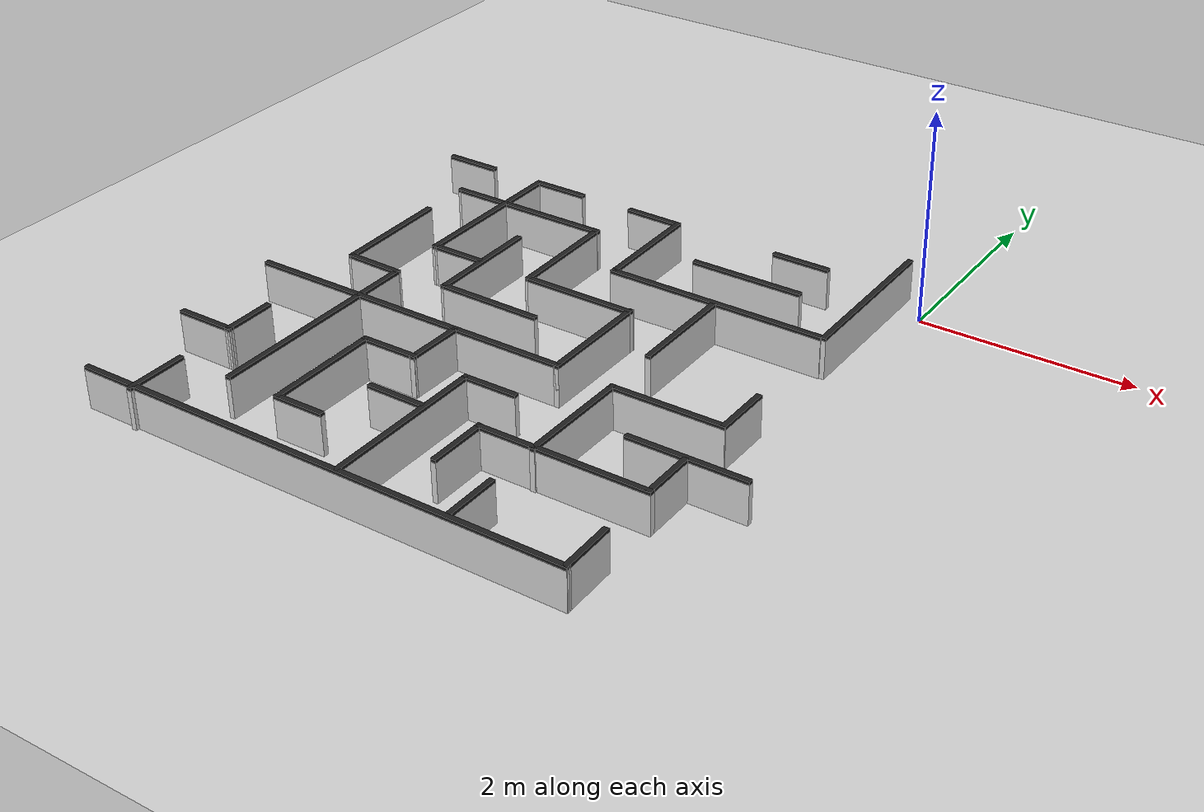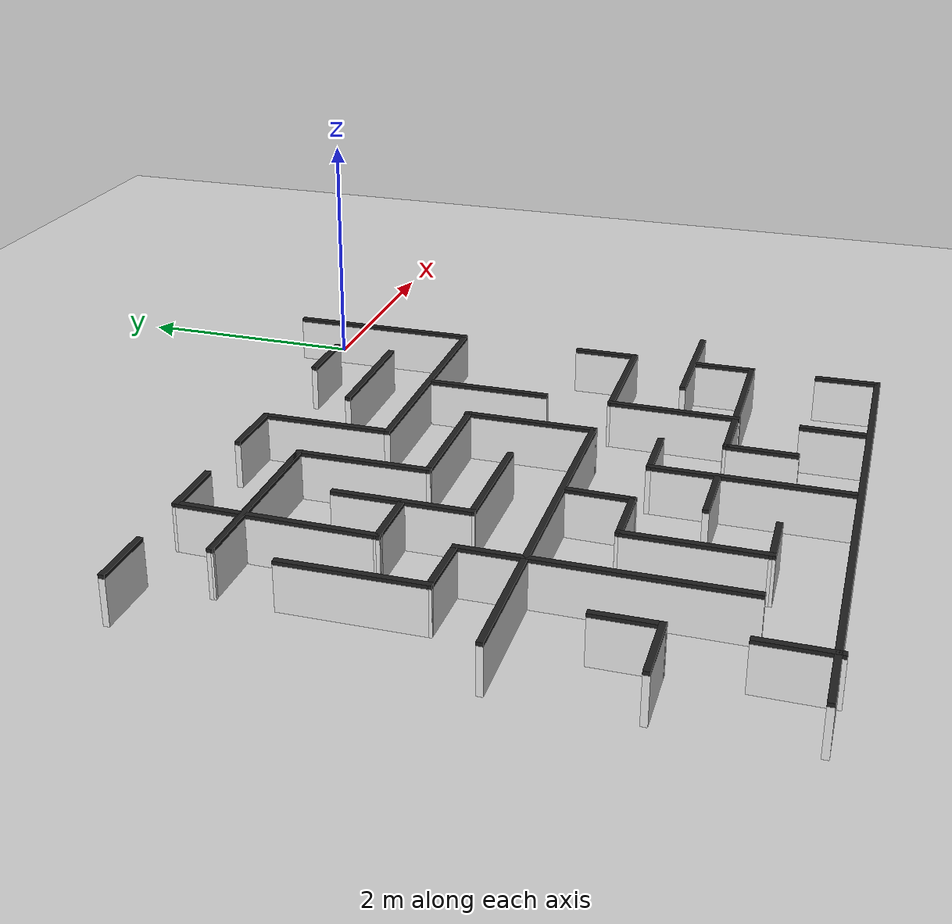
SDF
<sdf version="1.6">
 <world name="default">
  <model name="ground_plane">
   <static>1</static>
   <link name="link">
    <collision name="collision">
     <geometry><plane><normal>0 0 1</normal><size>100 100</size></plane></geometry>
     <surface><friction><ode><mu>100</mu><mu2>50</mu2></ode></friction></surface>
    </collision>
    <visual name="visual">
     <cast_shadows>0</cast_shadows>
     <geometry><plane><normal>0 0 1</normal><size>100 100</size></plane></geometry>
     <material>
      <script><uri>file://media/materials/scripts/gazebo.material</uri><name>Gazebo/Grey</name></script>
     </material>
    </visual>
   </link>
  </model>
  <model name="ibomaze">
   <link name="Wall_104">
    <collision name="Wall_104_Collision">
     <geometry><box><size>0.550695 0.05 0.37</size></box></geometry>
     <pose>0 0 0.185 0 -0 0</pose>
    </collision>
    <visual name="Wall_104_Visual">
     <pose>0 0 0.185 0 -0 0</pose>
     <geometry><box><size>0.550695 0.05 0.37</size></box></geometry>
     <material>
      <script><uri>file://media/materials/scripts/gazebo.material</uri><name>Gazebo/White</name></script>
      <ambient>1 1 1 1</ambient>
     </material>
    </visual>
    <pose>-0.259421 -2.63096 0 0 -0 1.5668</pose>
   </link>
   <link name="Wall_106">
    <collision name="Wall_106_Collision">
     <geometry><box><size>1.08202 0.05 0.37</size></box></geometry>
     <pose>0 0 0.185 0 -0 0</pose>
    </collision>
    <visual name="Wall_106_Visual">
     <pose>0 0 0.185 0 -0 0</pose>
     <geometry><box><size>1.08202 0.05 0.37</size></box></geometry>
     <material>
      <script><uri>file://media/materials/scripts/gazebo.material</uri><name>Gazebo/White</name></script>
      <ambient>1 1 1 1</ambient>
     </material>
    </visual>
    <pose>-0.782298 -2.8899 0 0 -0 0.005814</pose>
   </link>
   <link name="Wall_108">
    <collision name="Wall_108_Collision">
     <geometry><box><size>0.53 0.05 0.37</size></box></geometry>
     <pose>0 0 0.185 0 -0 0</pose>
    </collision>
    <visual name="Wall_108_Visual">
     <pose>0 0 0.185 0 -0 0</pose>
     <geometry><box><size>0.53 0.05 0.37</size></box></geometry>
     <material>
      <script><uri>file://media/materials/scripts/gazebo.material</uri><name>Gazebo/White</name></script>
      <ambient>1 1 1 1</ambient>
     </material>
    </visual>
    <pose>-4.72442 -0.249461 0 0 -0 0</pose>
   </link>
   <link name="Wall_11">
    <collision name="Wall_11_Collision">
     <geometry><box><size>3.19 0.05 0.37</size></box></geometry>
     <pose>0 0 0.185 0 -0 0</pose>
    </collision>
    <visual name="Wall_11_Visual">
     <pose>0 0 0.185 0 -0 0</pose>
     <geometry><box><size>3.19 0.05 0.37</size></box></geometry>
     <material>
      <script><uri>file://media/materials/scripts/gazebo.material</uri><name>Gazebo/White</name></script>
      <ambient>1 1 1 1</ambient>
     </material>
    </visual>
    <pose>-3.41742 -2.86946 0 0 -0 0</pose>
   </link>
   <link name="Wall_13">
    <collision name="Wall_13_Collision">
     <geometry><box><size>1.1 0.05 0.37</size></box></geometry>
     <pose>0 0 0.185 0 -0 0</pose>
    </collision>
    <visual name="Wall_13_Visual">
     <pose>0 0 0.185 0 -0 0</pose>
     <geometry><box><size>1.1 0.05 0.37</size></box></geometry>
     <material>
      <script><uri>file://media/materials/scripts/gazebo.material</uri><name>Gazebo/White</name></script>
      <ambient>1 1 1 1</ambient>
     </material>
    </visual>
    <pose>-1.84742 -2.34446 0 0 -0 1.5708</pose>
   </link>
   <link name="Wall_15">
    <collision name="Wall_15_Collision">
     <geometry><box><size>1.10019 0.05 0.37</size></box></geometry>
     <pose>0 0 0.185 0 -0 0</pose>
    </collision>
    <visual name="Wall_15_Visual">
     <pose>0 0 0.185 0 -0 0</pose>
     <geometry><box><size>1.10019 0.05 0.37</size></box></geometry>
     <material>
      <script><uri>file://media/materials/scripts/gazebo.material</uri><name>Gazebo/White</name></script>
      <ambient>1 1 1 1</ambient>
     </material>
    </visual>
    <pose>-2.37242 -1.82946 0 0 -0 3.14159</pose>
   </link>
   <link name="Wall_17">
    <collision name="Wall_17_Collision">
     <geometry><box><size>1.05005 0.05 0.37</size></box></geometry>
     <pose>0 0 0.185 0 -0 0</pose>
    </collision>
    <visual name="Wall_17_Visual">
     <pose>0 0 0.185 0 -0 0</pose>
     <geometry><box><size>1.05005 0.05 0.37</size></box></geometry>
     <material>
      <script><uri>file://media/materials/scripts/gazebo.material</uri><name>Gazebo/White</name></script>
      <ambient>1 1 1 1</ambient>
     </material>
    </visual>
    <pose>-2.90242 -1.32946 0 0 -0 1.5808</pose>
   </link>
   <link name="Wall_19">
    <collision name="Wall_19_Collision">
     <geometry><box><size>1.59158 0.05 0.37</size></box></geometry>
     <pose>0 0 0.185 0 -0 0</pose>
    </collision>
    <visual name="Wall_19_Visual">
     <pose>0 0 0.185 0 -0 0</pose>
     <geometry><box><size>1.59158 0.05 0.37</size></box></geometry>
     <material>
      <script><uri>file://media/materials/scripts/gazebo.material</uri><name>Gazebo/White</name></script>
      <ambient>1 1 1 1</ambient>
     </material>
    </visual>
    <pose>-3.67821 -0.782304 0 0 -0 0.003688</pose>
   </link>
   <link name="Wall_21">
    <collision name="Wall_21_Collision">
     <geometry><box><size>1.60249 0.05 0.37</size></box></geometry>
     <pose>0 0 0.185 0 -0 0</pose>
    </collision>
    <visual name="Wall_21_Visual">
     <pose>0 0 0.185 0 -0 0</pose>
     <geometry><box><size>1.60249 0.05 0.37</size></box></geometry>
     <material>
      <script><uri>file://media/materials/scripts/gazebo.material</uri><name>Gazebo/White</name></script>
      <ambient>1 1 1 1</ambient>
     </material>
    </visual>
    <pose>-3.94001 -1.03323 0 0 0 -1.58035</pose>
   </link>
   <link name="Wall_23">
    <collision name="Wall_23_Collision">
     <geometry><box><size>0.539891 0.05 0.37</size></box></geometry>
     <pose>0 0 0.185 0 -0 0</pose>
    </collision>
    <visual name="Wall_23_Visual">
     <pose>0 0 0.185 0 -0 0</pose>
     <geometry><box><size>0.539891 0.05 0.37</size></box></geometry>
     <material>
      <script><uri>file://media/materials/scripts/gazebo.material</uri><name>Gazebo/White</name></script>
      <ambient>1 1 1 1</ambient>
     </material>
    </visual>
    <pose>-3.70242 -1.80946 0 0 -0 0</pose>
   </link>
   <link name="Wall_25">
    <collision name="Wall_25_Collision">
     <geometry><box><size>1.11 0.05 0.37</size></box></geometry>
     <pose>0 0 0.185 0 -0 0</pose>
    </collision>
    <visual name="Wall_25_Visual">
     <pose>0 0 0.185 0 -0 0</pose>
     <geometry><box><size>1.11 0.05 0.37</size></box></geometry>
     <material>
      <script><uri>file://media/materials/scripts/gazebo.material</uri><name>Gazebo/White</name></script>
      <ambient>1 1 1 1</ambient>
     </material>
    </visual>
    <pose>-3.42742 -1.80946 0 0 0 -1.5708</pose>
   </link>
   <link name="Wall_27">
    <collision name="Wall_27_Collision">
     <geometry><box><size>1.01005 0.05 0.37</size></box></geometry>
     <pose>0 0 0.185 0 -0 0</pose>
    </collision>
    <visual name="Wall_27_Visual">
     <pose>0 0 0.185 0 -0 0</pose>
     <geometry><box><size>1.01005 0.05 0.37</size></box></geometry>
     <material>
      <script><uri>file://media/materials/scripts/gazebo.material</uri><name>Gazebo/White</name></script>
      <ambient>1 1 1 1</ambient>
     </material>
    </visual>
    <pose>-2.94742 -2.34446 0 0 -0 3.13118</pose>
   </link>
   <link name="Wall_29">
    <collision name="Wall_29_Collision">
     <geometry><box><size>2.13141 0.05 0.37</size></box></geometry>
     <pose>0 0 0.185 0 -0 0</pose>
    </collision>
    <visual name="Wall_29_Visual">
     <pose>0 0 0.185 0 -0 0</pose>
     <geometry><box><size>2.13141 0.05 0.37</size></box></geometry>
     <material>
      <script><uri>file://media/materials/scripts/gazebo.material</uri><name>Gazebo/White</name></script>
      <ambient>1 1 1 1</ambient>
     </material>
    </visual>
    <pose>-3.93842 -3.41196 0 0 -0 1.5708</pose>
   </link>
   <link name="Wall_3">
    <collision name="Wall_3_Collision">
     <geometry><box><size>4.7759 0.05 0.37</size></box></geometry>
     <pose>0 0 0.185 0 -0 0</pose>
    </collision>
    <visual name="Wall_3_Visual">
     <pose>0 0 0.185 0 -0 0</pose>
     <geometry><box><size>4.7759 0.05 0.37</size></box></geometry>
     <material>
      <script><uri>file://media/materials/scripts/gazebo.material</uri><name>Gazebo/White</name></script>
      <ambient>1 1 1 1</ambient>
     </material>
    </visual>
    <pose>-2.62448 -4.98295 0 0 0 -0.001898</pose>
   </link>
   <link name="Wall_31">
    <collision name="Wall_31_Collision">
     <geometry><box><size>0.568139 0.05 0.37</size></box></geometry>
     <pose>0 0 0.185 0 -0 0</pose>
    </collision>
    <visual name="Wall_31_Visual">
     <pose>0 0 0.185 0 -0 0</pose>
     <geometry><box><size>0.568139 0.05 0.37</size></box></geometry>
     <material>
      <script><uri>file://media/materials/scripts/gazebo.material</uri><name>Gazebo/White</name></script>
      <ambient>1 1 1 1</ambient>
     </material>
    </visual>
    <pose>-4.19742 -2.36546 0 0 0 -0.023162</pose>
   </link>
   <link name="Wall_33">
    <collision name="Wall_33_Collision">
     <geometry><box><size>1.13106 0.05 0.37</size></box></geometry>
     <pose>0 0 0.185 0 -0 0</pose>
    </collision>
    <visual name="Wall_33_Visual">
     <pose>0 0 0.185 0 -0 0</pose>
     <geometry><box><size>1.13106 0.05 0.37</size></box></geometry>
     <material>
      <script><uri>file://media/materials/scripts/gazebo.material</uri><name>Gazebo/White</name></script>
      <ambient>1 1 1 1</ambient>
     </material>
    </visual>
    <pose>-4.46192 -1.81896 0 0 0 -1.56062</pose>
   </link>
   <link name="Wall_35">
    <collision name="Wall_35_Collision">
     <geometry><box><size>0.566 0.05 0.37</size></box></geometry>
     <pose>0 0 0.185 0 -0 0</pose>
    </collision>
    <visual name="Wall_35_Visual">
     <pose>0 0 0.185 0 -0 0</pose>
     <geometry><box><size>0.566 0.05 0.37</size></box></geometry>
     <material>
      <script><uri>file://media/materials/scripts/gazebo.material</uri><name>Gazebo/White</name></script>
      <ambient>1 1 1 1</ambient>
     </material>
    </visual>
    <pose>-4.73242 -3.90446 0 0 -0 0</pose>
   </link>
   <link name="Wall_36">
    <collision name="Wall_36_Collision">
     <geometry><box><size>0.51201 0.05 0.37</size></box></geometry>
     <pose>0 0 0.185 0 -0 0</pose>
    </collision>
    <visual name="Wall_36_Visual">
     <pose>0 0 0.185 0 -0 0</pose>
     <geometry><box><size>0.51201 0.05 0.37</size></box></geometry>
     <material>
      <script><uri>file://media/materials/scripts/gazebo.material</uri><name>Gazebo/White</name></script>
      <ambient>1 1 1 1</ambient>
     </material>
    </visual>
    <pose>-4.47592 -3.67346 0 0 -0 1.57729</pose>
   </link>
   <link name="Wall_38">
    <collision name="Wall_38_Collision">
     <geometry><box><size>0.590149 0.05 0.37</size></box></geometry>
     <pose>0 0 0.185 0 -0 0</pose>
    </collision>
    <visual name="Wall_38_Visual">
     <pose>0 0 0.185 0 -0 0</pose>
     <geometry><box><size>0.590149 0.05 0.37</size></box></geometry>
     <material>
      <script><uri>file://media/materials/scripts/gazebo.material</uri><name>Gazebo/White</name></script>
      <ambient>1 1 1 1</ambient>
     </material>
    </visual>
    <pose>-4.47542 -4.74046 0 0 -0 1.5708</pose>
   </link>
   <link name="Wall_40">
    <collision name="Wall_40_Collision">
     <geometry><box><size>0.57988 0.05 0.37</size></box></geometry>
     <pose>0 0 0.185 0 -0 0</pose>
    </collision>
    <visual name="Wall_40_Visual">
     <pose>0 0 0.185 0 -0 0</pose>
     <geometry><box><size>0.57988 0.05 0.37</size></box></geometry>
     <material>
      <script><uri>file://media/materials/scripts/gazebo.material</uri><name>Gazebo/White</name></script>
      <ambient>1 1 1 1</ambient>
     </material>
    </visual>
    <pose>-2.90042 -3.13535 0 0 0 -1.58967</pose>
   </link>
   <link name="Wall_41">
    <collision name="Wall_41_Collision">
     <geometry><box><size>0.559916 0.05 0.37</size></box></geometry>
     <pose>0 0 0.185 0 -0 0</pose>
    </collision>
    <visual name="Wall_41_Visual">
     <pose>0 0 0.185 0 -0 0</pose>
     <geometry><box><size>0.559916 0.05 0.37</size></box></geometry>
     <material>
      <script><uri>file://media/materials/scripts/gazebo.material</uri><name>Gazebo/White</name></script>
      <ambient>1 1 1 1</ambient>
     </material>
    </visual>
    <pose>-3.16037 -3.40096 0 0 0 -3.13325</pose>
   </link>
   <link name="Wall_42">
    <collision name="Wall_42_Collision">
     <geometry><box><size>1.10884 0.05 0.37</size></box></geometry>
     <pose>0 0 0.185 0 -0 0</pose>
    </collision>
    <visual name="Wall_42_Visual">
     <pose>0 0 0.185 0 -0 0</pose>
     <geometry><box><size>1.10884 0.05 0.37</size></box></geometry>
     <material>
      <script><uri>file://media/materials/scripts/gazebo.material</uri><name>Gazebo/White</name></script>
      <ambient>1 1 1 1</ambient>
     </material>
    </visual>
    <pose>-3.41532 -3.93251 0 0 0 -1.5708</pose>
   </link>
   <link name="Wall_43">
    <collision name="Wall_43_Collision">
     <geometry><box><size>0.489908 0.05 0.37</size></box></geometry>
     <pose>0 0 0.185 0 -0 0</pose>
    </collision>
    <visual name="Wall_43_Visual">
     <pose>0 0 0.185 0 -0 0</pose>
     <geometry><box><size>0.489908 0.05 0.37</size></box></geometry>
     <material>
      <script><uri>file://media/materials/scripts/gazebo.material</uri><name>Gazebo/White</name></script>
      <ambient>1 1 1 1</ambient>
     </material>
    </visual>
    <pose>-3.19537 -4.46213 0 0 -0 0.006462</pose>
   </link>
   <link name="Wall_45">
    <collision name="Wall_45_Collision">
     <geometry><box><size>1.61397 0.05 0.37</size></box></geometry>
     <pose>0 0 0.185 0 -0 0</pose>
    </collision>
    <visual name="Wall_45_Visual">
     <pose>0 0 0.185 0 -0 0</pose>
     <geometry><box><size>1.61397 0.05 0.37</size></box></geometry>
     <material>
      <script><uri>file://media/materials/scripts/gazebo.material</uri><name>Gazebo/White</name></script>
      <ambient>1 1 1 1</ambient>
     </material>
    </visual>
    <pose>-2.35764 -4.20046 0 0 0 -1.57108</pose>
   </link>
   <link name="Wall_47">
    <collision name="Wall_47_Collision">
     <geometry><box><size>0.557164 0.05 0.37</size></box></geometry>
     <pose>0 0 0.185 0 -0 0</pose>
    </collision>
    <visual name="Wall_47_Visual">
     <pose>0 0 0.185 0 -0 0</pose>
     <geometry><box><size>0.557164 0.05 0.37</size></box></geometry>
     <material>
      <script><uri>file://media/materials/scripts/gazebo.material</uri><name>Gazebo/White</name></script>
      <ambient>1 1 1 1</ambient>
     </material>
    </visual>
    <pose>-2.64692 -3.93596 0 0 0 -0.005917</pose>
   </link>
   <link name="Wall_49">
    <collision name="Wall_49_Collision">
     <geometry><box><size>0.529198 0.05 0.37</size></box></geometry>
     <pose>0 0 0.185 0 -0 0</pose>
    </collision>
    <visual name="Wall_49_Visual">
     <pose>0 0 0.185 0 -0 0</pose>
     <geometry><box><size>0.529198 0.05 0.37</size></box></geometry>
     <material>
      <script><uri>file://media/materials/scripts/gazebo.material</uri><name>Gazebo/White</name></script>
      <ambient>1 1 1 1</ambient>
     </material>
    </visual>
    <pose>-2.11792 -3.41696 0 0 -0 0.006263</pose>
   </link>
   <link name="Wall_51">
    <collision name="Wall_51_Collision">
     <geometry><box><size>0.526051 0.05 0.37</size></box></geometry>
     <pose>0 0 0.185 0 -0 0</pose>
    </collision>
    <visual name="Wall_51_Visual">
     <pose>0 0 0.185 0 -0 0</pose>
     <geometry><box><size>0.526051 0.05 0.37</size></box></geometry>
     <material>
      <script><uri>file://media/materials/scripts/gazebo.material</uri><name>Gazebo/White</name></script>
      <ambient>1 1 1 1</ambient>
     </material>
    </visual>
    <pose>-1.31342 -4.70046 0 0 0 -1.5708</pose>
   </link>
   <link name="Wall_53">
    <collision name="Wall_53_Collision">
     <geometry><box><size>0.58994 0.05 0.37</size></box></geometry>
     <pose>0 0 0.185 0 -0 0</pose>
    </collision>
    <visual name="Wall_53_Visual">
     <pose>0 0 0.185 0 -0 0</pose>
     <geometry><box><size>0.58994 0.05 0.37</size></box></geometry>
     <material>
      <script><uri>file://media/materials/scripts/gazebo.material</uri><name>Gazebo/White</name></script>
      <ambient>1 1 1 1</ambient>
     </material>
    </visual>
    <pose>-1.8351 -4.19249 0 0 -0 1.5696</pose>
   </link>
   <link name="Wall_55">
    <collision name="Wall_55_Collision">
     <geometry><box><size>1.61866 0.05 0.37</size></box></geometry>
     <pose>0 0 0.185 0 -0 0</pose>
    </collision>
    <visual name="Wall_55_Visual">
     <pose>0 0 0.185 0 -0 0</pose>
     <geometry><box><size>1.61866 0.05 0.37</size></box></geometry>
     <material>
      <script><uri>file://media/materials/scripts/gazebo.material</uri><name>Gazebo/White</name></script>
      <ambient>1 1 1 1</ambient>
     </material>
    </visual>
    <pose>-1.05045 -3.92542 0 0 -0 0.00182</pose>
   </link>
   <link name="Wall_57">
    <collision name="Wall_57_Collision">
     <geometry><box><size>1.0941 0.05 0.37</size></box></geometry>
     <pose>0 0 0.185 0 -0 0</pose>
    </collision>
    <visual name="Wall_57_Visual">
     <pose>0 0 0.185 0 -0 0</pose>
     <geometry><box><size>1.0941 0.05 0.37</size></box></geometry>
     <material>
      <script><uri>file://media/materials/scripts/gazebo.material</uri><name>Gazebo/White</name></script>
      <ambient>1 1 1 1</ambient>
     </material>
    </visual>
    <pose>-1.30186 -3.4149 0 0 -0 1.56397</pose>
   </link>
   <link name="Wall_59">
    <collision name="Wall_59_Collision">
     <geometry><box><size>0.531001 0.05 0.37</size></box></geometry>
     <pose>0 0 0.185 0 -0 0</pose>
    </collision>
    <visual name="Wall_59_Visual">
     <pose>0 0 0.185 0 -0 0</pose>
     <geometry><box><size>0.531001 0.05 0.37</size></box></geometry>
     <material>
      <script><uri>file://media/materials/scripts/gazebo.material</uri><name>Gazebo/White</name></script>
      <ambient>1 1 1 1</ambient>
     </material>
    </visual>
    <pose>-0.26909 -3.68349 0 0 -0 1.57288</pose>
   </link>
   <link name="Wall_61">
    <collision name="Wall_61_Collision">
     <geometry><box><size>1.11413 0.05 0.37</size></box></geometry>
     <pose>0 0 0.185 0 -0 0</pose>
    </collision>
    <visual name="Wall_61_Visual">
     <pose>0 0 0.185 0 -0 0</pose>
     <geometry><box><size>1.11413 0.05 0.37</size></box></geometry>
     <material>
      <script><uri>file://media/materials/scripts/gazebo.material</uri><name>Gazebo/White</name></script>
      <ambient>1 1 1 1</ambient>
     </material>
    </visual>
    <pose>-0.266646 -3.41155 0 0 0 -0.00017</pose>
   </link>
   <link name="Wall_65">
    <collision name="Wall_65_Collision">
     <geometry><box><size>0.539124 0.05 0.37</size></box></geometry>
     <pose>0 0 0.185 0 -0 0</pose>
    </collision>
    <visual name="Wall_65_Visual">
     <pose>0 0 0.185 0 -0 0</pose>
     <geometry><box><size>0.539124 0.05 0.37</size></box></geometry>
     <material>
      <script><uri>file://media/materials/scripts/gazebo.material</uri><name>Gazebo/White</name></script>
      <ambient>1 1 1 1</ambient>
     </material>
    </visual>
    <pose>-0.267034 -4.73796 0 0 -0 1.59329</pose>
   </link>
   <link name="Wall_792">
    <collision name="Wall_792_Collision">
     <geometry><box><size>0.559694 0.05 0.37</size></box></geometry>
     <pose>0 0 0.185 0 -0 0</pose>
    </collision>
    <visual name="Wall_792_Visual">
     <pose>0 0 0.185 0 -0 0</pose>
     <geometry><box><size>0.559694 0.05 0.37</size></box></geometry>
     <material>
      <script><uri>file://media/materials/scripts/gazebo.material</uri><name>Gazebo/White</name></script>
      <ambient>1 1 1 1</ambient>
     </material>
    </visual>
    <pose>-1.06242 -0.257461 0 0 -0 0</pose>
   </link>
   <link name="Wall_794">
    <collision name="Wall_794_Collision">
     <geometry><box><size>1.08058 0.05 0.37</size></box></geometry>
     <pose>0 0 0.185 0 -0 0</pose>
    </collision>
    <visual name="Wall_794_Visual">
     <pose>0 0 0.185 0 -0 0</pose>
     <geometry><box><size>1.08058 0.05 0.37</size></box></geometry>
     <material>
      <script><uri>file://media/materials/scripts/gazebo.material</uri><name>Gazebo/White</name></script>
      <ambient>1 1 1 1</ambient>
     </material>
    </visual>
    <pose>-1.3191 -0.770372 0 0 -0 0.002661</pose>
   </link>
   <link name="Wall_802">
    <collision name="Wall_802_Collision">
     <geometry><box><size>0.544004 0.05 0.37</size></box></geometry>
     <pose>0 0 0.185 0 -0 0</pose>
    </collision>
    <visual name="Wall_802_Visual">
     <pose>0 0 0.185 0 -0 0</pose>
     <geometry><box><size>0.544004 0.05 0.37</size></box></geometry>
     <material>
      <script><uri>file://media/materials/scripts/gazebo.material</uri><name>Gazebo/White</name></script>
      <ambient>1 1 1 1</ambient>
     </material>
    </visual>
    <pose>-3.68559 -0.255989 0 0 -0 0.004049</pose>
   </link>
   <link name="Wall_804">
    <collision name="Wall_804_Collision">
     <geometry><box><size>1.594 0.05 0.37</size></box></geometry>
     <pose>0 0 0.185 0 -0 0</pose>
    </collision>
    <visual name="Wall_804_Visual">
     <pose>0 0 0.185 0 -0 0</pose>
     <geometry><box><size>1.594 0.05 0.37</size></box></geometry>
     <material>
      <script><uri>file://media/materials/scripts/gazebo.material</uri><name>Gazebo/White</name></script>
      <ambient>1 1 1 1</ambient>
     </material>
    </visual>
    <pose>-3.67699 -0.783146 0 0 -0 0.002591</pose>
   </link>
   <link name="Wall_806">
    <collision name="Wall_806_Collision">
     <geometry><box><size>0.557957 0.05 0.37</size></box></geometry>
     <pose>0 0 0.185 0 -0 0</pose>
    </collision>
    <visual name="Wall_806_Visual">
     <pose>0 0 0.185 0 -0 0</pose>
     <geometry><box><size>0.557957 0.05 0.37</size></box></geometry>
     <material>
      <script><uri>file://media/materials/scripts/gazebo.material</uri><name>Gazebo/White</name></script>
      <ambient>1 1 1 1</ambient>
     </material>
    </visual>
    <pose>-2.61871 -0.254225 0 0 0 -0.006945</pose>
   </link>
   <link name="Wall_808">
    <collision name="Wall_808_Collision">
     <geometry><box><size>1.10204 0.05 0.37</size></box></geometry>
     <pose>0 0 0.185 0 -0 0</pose>
    </collision>
    <visual name="Wall_808_Visual">
     <pose>0 0 0.185 0 -0 0</pose>
     <geometry><box><size>1.10204 0.05 0.37</size></box></geometry>
     <material>
      <script><uri>file://media/materials/scripts/gazebo.material</uri><name>Gazebo/White</name></script>
      <ambient>1 1 1 1</ambient>
     </material>
    </visual>
    <pose>-2.35716 -0.782225 0 0 -0 1.5798</pose>
   </link>
   <link name="Wall_810">
    <collision name="Wall_810_Collision">
     <geometry><box><size>2.0995 0.05 0.37</size></box></geometry>
     <pose>0 0 0.185 0 -0 0</pose>
    </collision>
    <visual name="Wall_810_Visual">
     <pose>0 0 0.185 0 -0 0</pose>
     <geometry><box><size>2.0995 0.05 0.37</size></box></geometry>
     <material>
      <script><uri>file://media/materials/scripts/gazebo.material</uri><name>Gazebo/White</name></script>
      <ambient>1 1 1 1</ambient>
     </material>
    </visual>
    <pose>-1.32792 -1.30696 0 0 -0 0.001464</pose>
   </link>
   <link name="Wall_812">
    <collision name="Wall_812_Collision">
     <geometry><box><size>1.61752 0.05 0.37</size></box></geometry>
     <pose>0 0 0.185 0 -0 0</pose>
    </collision>
    <visual name="Wall_812_Visual">
     <pose>0 0 0.185 0 -0 0</pose>
     <geometry><box><size>1.61752 0.05 0.37</size></box></geometry>
     <material>
      <script><uri>file://media/materials/scripts/gazebo.material</uri><name>Gazebo/White</name></script>
      <ambient>1 1 1 1</ambient>
     </material>
    </visual>
    <pose>-0.262567 -0.509972 0 0 0 -1.56588</pose>
   </link>
   <link name="Wall_898">
    <collision name="Wall_898_Collision">
     <geometry><box><size>1.04601 0.05 0.37</size></box></geometry>
     <pose>0 0 0.185 0 -0 0</pose>
    </collision>
    <visual name="Wall_898_Visual">
     <pose>0 0 0.185 0 -0 0</pose>
     <geometry><box><size>1.04601 0.05 0.37</size></box></geometry>
     <material>
      <script><uri>file://media/materials/scripts/gazebo.material</uri><name>Gazebo/White</name></script>
      <ambient>1 1 1 1</ambient>
     </material>
    </visual>
    <pose>-1.31469 -1.83254 0 0 0 -1.56678</pose>
   </link>
   <static>1</static>
  </model>
  <model name="ibomaze_5">
   <pose>0 0 0.37 0 -0 0</pose>
   <link name="Wall_104">
    <collision name="Wall_104_Collision">
     <geometry><box><size>0.550695 0.05 0.03</size></box></geometry>
     <pose>0 0 0.015 0 -0 0</pose>
    </collision>
    <visual name="Wall_104_Visual">
     <pose>0 0 0.015 0 -0 0</pose>
     <geometry><box><size>0.550695 0.05 0.03</size></box></geometry>
     <material>
      <script><uri>file://media/materials/scripts/gazebo.material</uri><name>Gazebo/Black</name></script>
      <ambient>0 0 0 1</ambient>
     </material>
    </visual>
    <pose>-0.259421 -2.63096 0 0 -0 1.5668</pose>
   </link>
   <link name="Wall_106">
    <collision name="Wall_106_Collision">
     <geometry><box><size>1.08202 0.05 0.03</size></box></geometry>
     <pose>0 0 0.015 0 -0 0</pose>
    </collision>
    <visual name="Wall_106_Visual">
     <pose>0 0 0.015 0 -0 0</pose>
     <geometry><box><size>1.08202 0.05 0.03</size></box></geometry>
     <material>
      <script><uri>file://media/materials/scripts/gazebo.material</uri><name>Gazebo/Black</name></script>
      <ambient>0 0 0 1</ambient>
     </material>
    </visual>
    <pose>-0.782298 -2.8899 0 0 -0 0.005814</pose>
   </link>
   <link name="Wall_108">
    <collision name="Wall_108_Collision">
     <geometry><box><size>0.53 0.05 0.03</size></box></geometry>
     <pose>0 0 0.015 0 -0 0</pose>
    </collision>
    <visual name="Wall_108_Visual">
     <pose>0 0 0.015 0 -0 0</pose>
     <geometry><box><size>0.53 0.05 0.03</size></box></geometry>
     <material>
      <script><uri>file://media/materials/scripts/gazebo.material</uri><name>Gazebo/Black</name></script>
      <ambient>0 0 0 1</ambient>
     </material>
    </visual>
    <pose>-4.72442 -0.249461 0 0 -0 0</pose>
   </link>
   <link name="Wall_11">
    <collision name="Wall_11_Collision">
     <geometry><box><size>3.19 0.05 0.03</size></box></geometry>
     <pose>0 0 0.015 0 -0 0</pose>
    </collision>
    <visual name="Wall_11_Visual">
     <pose>0 0 0.015 0 -0 0</pose>
     <geometry><box><size>3.19 0.05 0.03</size></box></geometry>
     <material>
      <script><uri>file://media/materials/scripts/gazebo.material</uri><name>Gazebo/Black</name></script>
      <ambient>0 0 0 1</ambient>
     </material>
    </visual>
    <pose>-3.41742 -2.86946 0 0 -0 0</pose>
   </link>
   <link name="Wall_13">
    <collision name="Wall_13_Collision">
     <geometry><box><size>1.1 0.05 0.03</size></box></geometry>
     <pose>0 0 0.015 0 -0 0</pose>
    </collision>
    <visual name="Wall_13_Visual">
     <pose>0 0 0.015 0 -0 0</pose>
     <geometry><box><size>1.1 0.05 0.03</size></box></geometry>
     <material>
      <script><uri>file://media/materials/scripts/gazebo.material</uri><name>Gazebo/Black</name></script>
      <ambient>0 0 0 1</ambient>
     </material>
    </visual>
    <pose>-1.84742 -2.34446 0 0 -0 1.5708</pose>
   </link>
   <link name="Wall_15">
    <collision name="Wall_15_Collision">
     <geometry><box><size>1.10019 0.05 0.03</size></box></geometry>
     <pose>0 0 0.015 0 -0 0</pose>
    </collision>
    <visual name="Wall_15_Visual">
     <pose>0 0 0.015 0 -0 0</pose>
     <geometry><box><size>1.10019 0.05 0.03</size></box></geometry>
     <material>
      <script><uri>file://media/materials/scripts/gazebo.material</uri><name>Gazebo/Black</name></script>
      <ambient>0 0 0 1</ambient>
     </material>
    </visual>
    <pose>-2.37242 -1.82946 0 0 -0 3.14159</pose>
   </link>
   <link name="Wall_17">
    <collision name="Wall_17_Collision">
     <geometry><box><size>1.05005 0.05 0.03</size></box></geometry>
     <pose>0 0 0.015 0 -0 0</pose>
    </collision>
    <visual name="Wall_17_Visual">
     <pose>0 0 0.015 0 -0 0</pose>
     <geometry><box><size>1.05005 0.05 0.03</size></box></geometry>
     <material>
      <script><uri>file://media/materials/scripts/gazebo.material</uri><name>Gazebo/Black</name></script>
      <ambient>0 0 0 1</ambient>
     </material>
    </visual>
    <pose>-2.90242 -1.32946 0 0 -0 1.5808</pose>
   </link>
   <link name="Wall_19">
    <collision name="Wall_19_Collision">
     <geometry><box><size>1.59158 0.05 0.03</size></box></geometry>
     <pose>0 0 0.015 0 -0 0</pose>
    </collision>
    <visual name="Wall_19_Visual">
     <pose>0 0 0.015 0 -0 0</pose>
     <geometry><box><size>1.59158 0.05 0.03</size></box></geometry>
     <material>
      <script><uri>file://media/materials/scripts/gazebo.material</uri><name>Gazebo/Black</name></script>
      <ambient>0 0 0 1</ambient>
     </material>
    </visual>
    <pose>-3.67821 -0.782304 0 0 -0 0.003688</pose>
   </link>
   <link name="Wall_21">
    <collision name="Wall_21_Collision">
     <geometry><box><size>1.60249 0.05 0.03</size></box></geometry>
     <pose>0 0 0.015 0 -0 0</pose>
    </collision>
    <visual name="Wall_21_Visual">
     <pose>0 0 0.015 0 -0 0</pose>
     <geometry><box><size>1.60249 0.05 0.03</size></box></geometry>
     <material>
      <script><uri>file://media/materials/scripts/gazebo.material</uri><name>Gazebo/Black</name></script>
      <ambient>0 0 0 1</ambient>
     </material>
    </visual>
    <pose>-3.94001 -1.03323 0 0 0 -1.58035</pose>
   </link>
   <link name="Wall_23">
    <collision name="Wall_23_Collision">
     <geometry><box><size>0.539891 0.05 0.03</size></box></geometry>
     <pose>0 0 0.015 0 -0 0</pose>
    </collision>
    <visual name="Wall_23_Visual">
     <pose>0 0 0.015 0 -0 0</pose>
     <geometry><box><size>0.539891 0.05 0.03</size></box></geometry>
     <material>
      <script><uri>file://media/materials/scripts/gazebo.material</uri><name>Gazebo/Black</name></script>
      <ambient>0 0 0 1</ambient>
     </material>
    </visual>
    <pose>-3.70242 -1.80946 0 0 -0 0</pose>
   </link>
   <link name="Wall_25">
    <collision name="Wall_25_Collision">
     <geometry><box><size>1.11 0.05 0.03</size></box></geometry>
     <pose>0 0 0.015 0 -0 0</pose>
    </collision>
    <visual name="Wall_25_Visual">
     <pose>0 0 0.015 0 -0 0</pose>
     <geometry><box><size>1.11 0.05 0.03</size></box></geometry>
     <material>
      <script><uri>file://media/materials/scripts/gazebo.material</uri><name>Gazebo/Black</name></script>
      <ambient>0 0 0 1</ambient>
     </material>
    </visual>
    <pose>-3.42742 -1.80946 0 0 0 -1.5708</pose>
   </link>
   <link name="Wall_27">
    <collision name="Wall_27_Collision">
     <geometry><box><size>1.01005 0.05 0.03</size></box></geometry>
     <pose>0 0 0.015 0 -0 0</pose>
    </collision>
    <visual name="Wall_27_Visual">
     <pose>0 0 0.015 0 -0 0</pose>
     <geometry><box><size>1.01005 0.05 0.03</size></box></geometry>
     <material>
      <script><uri>file://media/materials/scripts/gazebo.material</uri><name>Gazebo/Black</name></script>
      <ambient>0 0 0 1</ambient>
     </material>
    </visual>
    <pose>-2.94742 -2.34446 0 0 -0 3.13118</pose>
   </link>
   <link name="Wall_29">
    <collision name="Wall_29_Collision">
     <geometry><box><size>2.13141 0.05 0.03</size></box></geometry>
     <pose>0 0 0.015 0 -0 0</pose>
    </collision>
    <visual name="Wall_29_Visual">
     <pose>0 0 0.015 0 -0 0</pose>
     <geometry><box><size>2.13141 0.05 0.03</size></box></geometry>
     <material>
      <script><uri>file://media/materials/scripts/gazebo.material</uri><name>Gazebo/Black</name></script>
      <ambient>0 0 0 1</ambient>
     </material>
    </visual>
    <pose>-3.93842 -3.41196 0 0 -0 1.5708</pose>
   </link>
   <link name="Wall_3">
    <collision name="Wall_3_Collision">
     <geometry><box><size>4.7759 0.05 0.03</size></box></geometry>
     <pose>0 0 0.015 0 -0 0</pose>
    </collision>
    <visual name="Wall_3_Visual">
     <pose>0 0 0.015 0 -0 0</pose>
     <geometry><box><size>4.7759 0.05 0.03</size></box></geometry>
     <material>
      <script><uri>file://media/materials/scripts/gazebo.material</uri><name>Gazebo/Black</name></script>
      <ambient>0 0 0 1</ambient>
     </material>
    </visual>
    <pose>-2.62448 -4.98295 0 0 0 -0.001898</pose>
   </link>
   <link name="Wall_31">
    <collision name="Wall_31_Collision">
     <geometry><box><size>0.568139 0.05 0.03</size></box></geometry>
     <pose>0 0 0.015 0 -0 0</pose>
    </collision>
    <visual name="Wall_31_Visual">
     <pose>0 0 0.015 0 -0 0</pose>
     <geometry><box><size>0.568139 0.05 0.03</size></box></geometry>
     <material>
      <script><uri>file://media/materials/scripts/gazebo.material</uri><name>Gazebo/Black</name></script>
      <ambient>0 0 0 1</ambient>
     </material>
    </visual>
    <pose>-4.19742 -2.36546 0 0 0 -0.023162</pose>
   </link>
   <link name="Wall_33">
    <collision name="Wall_33_Collision">
     <geometry><box><size>1.13106 0.05 0.03</size></box></geometry>
     <pose>0 0 0.015 0 -0 0</pose>
    </collision>
    <visual name="Wall_33_Visual">
     <pose>0 0 0.015 0 -0 0</pose>
     <geometry><box><size>1.13106 0.05 0.03</size></box></geometry>
     <material>
      <script><uri>file://media/materials/scripts/gazebo.material</uri><name>Gazebo/Black</name></script>
      <ambient>0 0 0 1</ambient>
     </material>
    </visual>
    <pose>-4.46192 -1.81896 0 0 0 -1.56062</pose>
   </link>
   <link name="Wall_35">
    <collision name="Wall_35_Collision">
     <geometry><box><size>0.566 0.05 0.03</size></box></geometry>
     <pose>0 0 0.015 0 -0 0</pose>
    </collision>
    <visual name="Wall_35_Visual">
     <pose>0 0 0.015 0 -0 0</pose>
     <geometry><box><size>0.566 0.05 0.03</size></box></geometry>
     <material>
      <script><uri>file://media/materials/scripts/gazebo.material</uri><name>Gazebo/Black</name></script>
      <ambient>0 0 0 1</ambient>
     </material>
    </visual>
    <pose>-4.73242 -3.90446 0 0 -0 0</pose>
   </link>
   <link name="Wall_36">
    <collision name="Wall_36_Collision">
     <geometry><box><size>0.51201 0.05 0.03</size></box></geometry>
     <pose>0 0 0.015 0 -0 0</pose>
    </collision>
    <visual name="Wall_36_Visual">
     <pose>0 0 0.015 0 -0 0</pose>
     <geometry><box><size>0.51201 0.05 0.03</size></box></geometry>
     <material>
      <script><uri>file://media/materials/scripts/gazebo.material</uri><name>Gazebo/Black</name></script>
      <ambient>0 0 0 1</ambient>
     </material>
    </visual>
    <pose>-4.47592 -3.67346 0 0 -0 1.57729</pose>
   </link>
   <link name="Wall_38">
    <collision name="Wall_38_Collision">
     <geometry><box><size>0.590149 0.05 0.03</size></box></geometry>
     <pose>0 0 0.015 0 -0 0</pose>
    </collision>
    <visual name="Wall_38_Visual">
     <pose>0 0 0.015 0 -0 0</pose>
     <geometry><box><size>0.590149 0.05 0.03</size></box></geometry>
     <material>
      <script><uri>file://media/materials/scripts/gazebo.material</uri><name>Gazebo/Black</name></script>
      <ambient>0 0 0 1</ambient>
     </material>
    </visual>
    <pose>-4.47542 -4.74046 0 0 -0 1.5708</pose>
   </link>
   <link name="Wall_40">
    <collision name="Wall_40_Collision">
     <geometry><box><size>0.57988 0.05 0.03</size></box></geometry>
     <pose>0 0 0.015 0 -0 0</pose>
    </collision>
    <visual name="Wall_40_Visual">
     <pose>0 0 0.015 0 -0 0</pose>
     <geometry><box><size>0.57988 0.05 0.03</size></box></geometry>
     <material>
      <script><uri>file://media/materials/scripts/gazebo.material</uri><name>Gazebo/Black</name></script>
      <ambient>0 0 0 1</ambient>
     </material>
    </visual>
    <pose>-2.90042 -3.13535 0 0 0 -1.58967</pose>
   </link>
   <link name="Wall_41">
    <collision name="Wall_41_Collision">
     <geometry><box><size>0.559916 0.05 0.03</size></box></geometry>
     <pose>0 0 0.015 0 -0 0</pose>
    </collision>
    <visual name="Wall_41_Visual">
     <pose>0 0 0.015 0 -0 0</pose>
     <geometry><box><size>0.559916 0.05 0.03</size></box></geometry>
     <material>
      <script><uri>file://media/materials/scripts/gazebo.material</uri><name>Gazebo/Black</name></script>
      <ambient>0 0 0 1</ambient>
     </material>
    </visual>
    <pose>-3.16037 -3.40096 0 0 0 -3.13325</pose>
   </link>
   <link name="Wall_42">
    <collision name="Wall_42_Collision">
     <geometry><box><size>1.10884 0.05 0.03</size></box></geometry>
     <pose>0 0 0.015 0 -0 0</pose>
    </collision>
    <visual name="Wall_42_Visual">
     <pose>0 0 0.015 0 -0 0</pose>
     <geometry><box><size>1.10884 0.05 0.03</size></box></geometry>
     <material>
      <script><uri>file://media/materials/scripts/gazebo.material</uri><name>Gazebo/Black</name></script>
      <ambient>0 0 0 1</ambient>
     </material>
    </visual>
    <pose>-3.41532 -3.93251 0 0 0 -1.5708</pose>
   </link>
   <link name="Wall_43">
    <collision name="Wall_43_Collision">
     <geometry><box><size>0.489908 0.05 0.03</size></box></geometry>
     <pose>0 0 0.015 0 -0 0</pose>
    </collision>
    <visual name="Wall_43_Visual">
     <pose>0 0 0.015 0 -0 0</pose>
     <geometry><box><size>0.489908 0.05 0.03</size></box></geometry>
     <material>
      <script><uri>file://media/materials/scripts/gazebo.material</uri><name>Gazebo/Black</name></script>
      <ambient>0 0 0 1</ambient>
     </material>
    </visual>
    <pose>-3.19537 -4.46213 0 0 -0 0.006462</pose>
   </link>
   <link name="Wall_45">
    <collision name="Wall_45_Collision">
     <geometry><box><size>1.61397 0.05 0.03</size></box></geometry>
     <pose>0 0 0.015 0 -0 0</pose>
    </collision>
    <visual name="Wall_45_Visual">
     <pose>0 0 0.015 0 -0 0</pose>
     <geometry><box><size>1.61397 0.05 0.03</size></box></geometry>
     <material>
      <script><uri>file://media/materials/scripts/gazebo.material</uri><name>Gazebo/Black</name></script>
      <ambient>0 0 0 1</ambient>
     </material>
    </visual>
    <pose>-2.35764 -4.20046 0 0 0 -1.57108</pose>
   </link>
   <link name="Wall_47">
    <collision name="Wall_47_Collision">
     <geometry><box><size>0.557164 0.05 0.03</size></box></geometry>
     <pose>0 0 0.015 0 -0 0</pose>
    </collision>
    <visual name="Wall_47_Visual">
     <pose>0 0 0.015 0 -0 0</pose>
     <geometry><box><size>0.557164 0.05 0.03</size></box></geometry>
     <material>
      <script><uri>file://media/materials/scripts/gazebo.material</uri><name>Gazebo/Black</name></script>
      <ambient>0 0 0 1</ambient>
     </material>
    </visual>
    <pose>-2.64692 -3.93596 0 0 0 -0.005917</pose>
   </link>
   <link name="Wall_49">
    <collision name="Wall_49_Collision">
     <geometry><box><size>0.529198 0.05 0.03</size></box></geometry>
     <pose>0 0 0.015 0 -0 0</pose>
    </collision>
    <visual name="Wall_49_Visual">
     <pose>0 0 0.015 0 -0 0</pose>
     <geometry><box><size>0.529198 0.05 0.03</size></box></geometry>
     <material>
      <script><uri>file://media/materials/scripts/gazebo.material</uri><name>Gazebo/Black</name></script>
      <ambient>0 0 0 1</ambient>
     </material>
    </visual>
    <pose>-2.11792 -3.41696 0 0 -0 0.006263</pose>
   </link>
   <link name="Wall_51">
    <collision name="Wall_51_Collision">
     <geometry><box><size>0.526051 0.05 0.03</size></box></geometry>
     <pose>0 0 0.015 0 -0 0</pose>
    </collision>
    <visual name="Wall_51_Visual">
     <pose>0 0 0.015 0 -0 0</pose>
     <geometry><box><size>0.526051 0.05 0.03</size></box></geometry>
     <material>
      <script><uri>file://media/materials/scripts/gazebo.material</uri><name>Gazebo/Black</name></script>
      <ambient>0 0 0 1</ambient>
     </material>
    </visual>
    <pose>-1.31342 -4.70046 0 0 0 -1.5708</pose>
   </link>
   <link name="Wall_53">
    <collision name="Wall_53_Collision">
     <geometry><box><size>0.58994 0.05 0.03</size></box></geometry>
     <pose>0 0 0.015 0 -0 0</pose>
    </collision>
    <visual name="Wall_53_Visual">
     <pose>0 0 0.015 0 -0 0</pose>
     <geometry><box><size>0.58994 0.05 0.03</size></box></geometry>
     <material>
      <script><uri>file://media/materials/scripts/gazebo.material</uri><name>Gazebo/Black</name></script>
      <ambient>0 0 0 1</ambient>
     </material>
    </visual>
    <pose>-1.8351 -4.19249 0 0 -0 1.5696</pose>
   </link>
   <link name="Wall_55">
    <collision name="Wall_55_Collision">
     <geometry><box><size>1.61866 0.05 0.03</size></box></geometry>
     <pose>0 0 0.015 0 -0 0</pose>
    </collision>
    <visual name="Wall_55_Visual">
     <pose>0 0 0.015 0 -0 0</pose>
     <geometry><box><size>1.61866 0.05 0.03</size></box></geometry>
     <material>
      <script><uri>file://media/materials/scripts/gazebo.material</uri><name>Gazebo/Black</name></script>
      <ambient>0 0 0 1</ambient>
     </material>
    </visual>
    <pose>-1.05045 -3.92542 0 0 -0 0.00182</pose>
   </link>
   <link name="Wall_57">
    <collision name="Wall_57_Collision">
     <geometry><box><size>1.0941 0.05 0.03</size></box></geometry>
     <pose>0 0 0.015 0 -0 0</pose>
    </collision>
    <visual name="Wall_57_Visual">
     <pose>0 0 0.015 0 -0 0</pose>
     <geometry><box><size>1.0941 0.05 0.03</size></box></geometry>
     <material>
      <script><uri>file://media/materials/scripts/gazebo.material</uri><name>Gazebo/Black</name></script>
      <ambient>0 0 0 1</ambient>
     </material>
    </visual>
    <pose>-1.30186 -3.4149 0 0 -0 1.56397</pose>
   </link>
   <link name="Wall_59">
    <collision name="Wall_59_Collision">
     <geometry><box><size>0.531001 0.05 0.03</size></box></geometry>
     <pose>0 0 0.015 0 -0 0</pose>
    </collision>
    <visual name="Wall_59_Visual">
     <pose>0 0 0.015 0 -0 0</pose>
     <geometry><box><size>0.531001 0.05 0.03</size></box></geometry>
     <material>
      <script><uri>file://media/materials/scripts/gazebo.material</uri><name>Gazebo/Black</name></script>
      <ambient>0 0 0 1</ambient>
     </material>
    </visual>
    <pose>-0.26909 -3.68349 0 0 -0 1.57288</pose>
   </link>
   <link name="Wall_61">
    <collision name="Wall_61_Collision">
     <geometry><box><size>1.11413 0.05 0.03</size></box></geometry>
     <pose>0 0 0.015 0 -0 0</pose>
    </collision>
    <visual name="Wall_61_Visual">
     <pose>0 0 0.015 0 -0 0</pose>
     <geometry><box><size>1.11413 0.05 0.03</size></box></geometry>
     <material>
      <script><uri>file://media/materials/scripts/gazebo.material</uri><name>Gazebo/Black</name></script>
      <ambient>0 0 0 1</ambient>
     </material>
    </visual>
    <pose>-0.266646 -3.41155 0 0 0 -0.00017</pose>
   </link>
   <link name="Wall_65">
    <collision name="Wall_65_Collision">
     <geometry><box><size>0.539124 0.05 0.03</size></box></geometry>
     <pose>0 0 0.015 0 -0 0</pose>
    </collision>
    <visual name="Wall_65_Visual">
     <pose>0 0 0.015 0 -0 0</pose>
     <geometry><box><size>0.539124 0.05 0.03</size></box></geometry>
     <material>
      <script><uri>file://media/materials/scripts/gazebo.material</uri><name>Gazebo/Black</name></script>
      <ambient>0 0 0 1</ambient>
     </material>
    </visual>
    <pose>-0.267034 -4.73796 0 0 -0 1.59329</pose>
   </link>
   <link name="Wall_792">
    <collision name="Wall_792_Collision">
     <geometry><box><size>0.559694 0.05 0.03</size></box></geometry>
     <pose>0 0 0.015 0 -0 0</pose>
    </collision>
    <visual name="Wall_792_Visual">
     <pose>0 0 0.015 0 -0 0</pose>
     <geometry><box><size>0.559694 0.05 0.03</size></box></geometry>
     <material>
      <script><uri>file://media/materials/scripts/gazebo.material</uri><name>Gazebo/Black</name></script>
      <ambient>0 0 0 1</ambient>
     </material>
    </visual>
    <pose>-1.06242 -0.257461 0 0 -0 0</pose>
   </link>
   <link name="Wall_794">
    <collision name="Wall_794_Collision">
     <geometry><box><size>1.08058 0.05 0.03</size></box></geometry>
     <pose>0 0 0.015 0 -0 0</pose>
    </collision>
    <visual name="Wall_794_Visual">
     <pose>0 0 0.015 0 -0 0</pose>
     <geometry><box><size>1.08058 0.05 0.03</size></box></geometry>
     <material>
      <script><uri>file://media/materials/scripts/gazebo.material</uri><name>Gazebo/Black</name></script>
      <ambient>0 0 0 1</ambient>
     </material>
    </visual>
    <pose>-1.3191 -0.770372 0 0 -0 0.002661</pose>
   </link>
   <link name="Wall_802">
    <collision name="Wall_802_Collision">
     <geometry><box><size>0.544004 0.05 0.03</size></box></geometry>
     <pose>0 0 0.015 0 -0 0</pose>
    </collision>
    <visual name="Wall_802_Visual">
     <pose>0 0 0.015 0 -0 0</pose>
     <geometry><box><size>0.544004 0.05 0.03</size></box></geometry>
     <material>
      <script><uri>file://media/materials/scripts/gazebo.material</uri><name>Gazebo/Black</name></script>
      <ambient>0 0 0 1</ambient>
     </material>
    </visual>
    <pose>-3.68559 -0.255989 0 0 -0 0.004049</pose>
   </link>
   <link name="Wall_804">
    <collision name="Wall_804_Collision">
     <geometry><box><size>1.594 0.05 0.03</size></box></geometry>
     <pose>0 0 0.015 0 -0 0</pose>
    </collision>
    <visual name="Wall_804_Visual">
     <pose>0 0 0.015 0 -0 0</pose>
     <geometry><box><size>1.594 0.05 0.03</size></box></geometry>
     <material>
      <script><uri>file://media/materials/scripts/gazebo.material</uri><name>Gazebo/Black</name></script>
      <ambient>0 0 0 1</ambient>
     </material>
    </visual>
    <pose>-3.67699 -0.783146 0 0 -0 0.002591</pose>
   </link>
   <link name="Wall_806">
    <collision name="Wall_806_Collision">
     <geometry><box><size>0.557957 0.05 0.03</size></box></geometry>
     <pose>0 0 0.015 0 -0 0</pose>
    </collision>
    <visual name="Wall_806_Visual">
     <pose>0 0 0.015 0 -0 0</pose>
     <geometry><box><size>0.557957 0.05 0.03</size></box></geometry>
     <material>
      <script><uri>file://media/materials/scripts/gazebo.material</uri><name>Gazebo/Black</name></script>
      <ambient>0 0 0 1</ambient>
     </material>
    </visual>
    <pose>-2.61871 -0.254225 0 0 0 -0.006945</pose>
   </link>
   <link name="Wall_808">
    <collision name="Wall_808_Collision">
     <geometry><box><size>1.10204 0.05 0.03</size></box></geometry>
     <pose>0 0 0.015 0 -0 0</pose>
    </collision>
    <visual name="Wall_808_Visual">
     <pose>0 0 0.015 0 -0 0</pose>
     <geometry><box><size>1.10204 0.05 0.03</size></box></geometry>
     <material>
      <script><uri>file://media/materials/scripts/gazebo.material</uri><name>Gazebo/Black</name></script>
      <ambient>0 0 0 1</ambient>
     </material>
    </visual>
    <pose>-2.35716 -0.782225 0 0 -0 1.5798</pose>
   </link>
   <link name="Wall_810">
    <collision name="Wall_810_Collision">
     <geometry><box><size>2.0995 0.05 0.03</size></box></geometry>
     <pose>0 0 0.015 0 -0 0</pose>
    </collision>
    <visual name="Wall_810_Visual">
     <pose>0 0 0.015 0 -0 0</pose>
     <geometry><box><size>2.0995 0.05 0.03</size></box></geometry>
     <material>
      <script><uri>file://media/materials/scripts/gazebo.material</uri><name>Gazebo/Black</name></script>
      <ambient>0 0 0 1</ambient>
     </material>
    </visual>
    <pose>-1.32792 -1.30696 0 0 -0 0.001464</pose>
   </link>
   <link name="Wall_812">
    <collision name="Wall_812_Collision">
     <geometry><box><size>1.61752 0.05 0.03</size></box></geometry>
     <pose>0 0 0.015 0 -0 0</pose>
    </collision>
    <visual name="Wall_812_Visual">
     <pose>0 0 0.015 0 -0 0</pose>
     <geometry><box><size>1.61752 0.05 0.03</size></box></geometry>
     <material>
      <script><uri>file://media/materials/scripts/gazebo.material</uri><name>Gazebo/Black</name></script>
      <ambient>0 0 0 1</ambient>
     </material>
    </visual>
    <pose>-0.262567 -0.509972 0 0 0 -1.56588</pose>
   </link>
   <link name="Wall_898">
    <collision name="Wall_898_Collision">
     <geometry><box><size>1.04601 0.05 0.03</size></box></geometry>
     <pose>0 0 0.015 0 -0 0</pose>
    </collision>
    <visual name="Wall_898_Visual">
     <pose>0 0 0.015 0 -0 0</pose>
     <geometry><box><size>1.04601 0.05 0.03</size></box></geometry>
     <material>
      <script><uri>file://media/materials/scripts/gazebo.material</uri><name>Gazebo/Black</name></script>
      <ambient>0 0 0 1</ambient>
     </material>
    </visual>
    <pose>-1.31469 -1.83254 0 0 0 -1.56678</pose>
   </link>
   <static>1</static>
  </model>
 </world>
</sdf>
